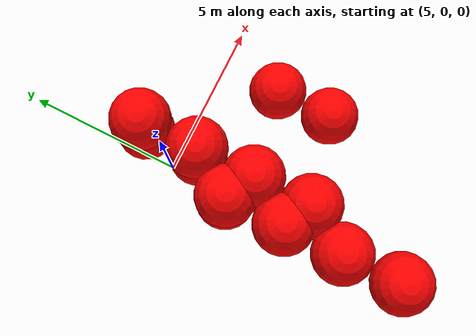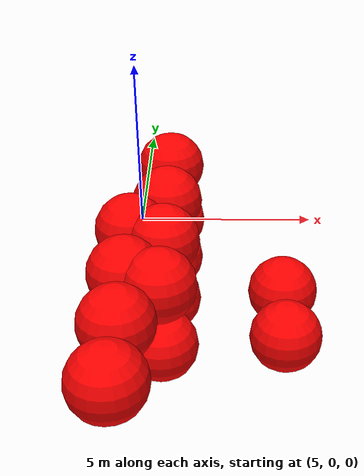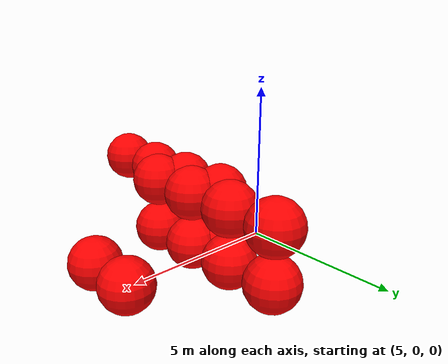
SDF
<sdf version="1.8">
 <world name="3d_world">
  <model name="obstacle_1" canonical_link="obstacle">
   <static>true</static>
   <pose relative_to="world">5.81 -4.48 -1.00 0 0 0</pose>
   <link name="obstacle">
    <pose relative_to="__model__">0.0 0 0.0 0 0 0</pose>
    <visual name="visual">
     <geometry><sphere><radius>1.00</radius></sphere></geometry>
     <material>
      <ambient>1.0 0.0 0.0 1</ambient>
      <diffuse>1.0 0.0 0.0 1</diffuse>
      <specular>1.0 0.0 0.0 1</specular>
     </material>
    </visual>
    <collision name="collision"><geometry><sphere><radius>1.00</radius></sphere></geometry></collision>
    <enable_gravity>false</enable_gravity>
   </link>
   <plugin filename="ignition-gazebo-velocity-control-system" name="ignition::gazebo::systems::VelocityControl">
    <initial_linear>0.00 0.00 0.00</initial_linear>
    <initial_angular>0 0 0</initial_angular>
   </plugin>
   <plugin filename="ignition-gazebo-odometry-publisher-system" name="ignition::gazebo::systems::OdometryPublisher">
    <dimensions>3</dimensions>
   </plugin>
  </model>
  <model name="obstacle_2" canonical_link="obstacle">
   <static>true</static>
   <pose relative_to="world">5.81 -2.48 -1.00 0 0 0</pose>
   <link name="obstacle">
    <pose relative_to="__model__">0.0 0 0.0 0 0 0</pose>
    <visual name="visual">
     <geometry><sphere><radius>1.00</radius></sphere></geometry>
     <material>
      <ambient>1.0 0.0 0.0 1</ambient>
      <diffuse>1.0 0.0 0.0 1</diffuse>
      <specular>1.0 0.0 0.0 1</specular>
     </material>
    </visual>
    <collision name="collision"><geometry><sphere><radius>1.00</radius></sphere></geometry></collision>
    <enable_gravity>false</enable_gravity>
   </link>
   <plugin filename="ignition-gazebo-velocity-control-system" name="ignition::gazebo::systems::VelocityControl">
    <initial_linear>0.00 0.00 0.00</initial_linear>
    <initial_angular>0 0 0</initial_angular>
   </plugin>
   <plugin filename="ignition-gazebo-odometry-publisher-system" name="ignition::gazebo::systems::OdometryPublisher">
    <dimensions>3</dimensions>
   </plugin>
  </model>
  <model name="obstacle_3" canonical_link="obstacle">
   <static>true</static>
   <pose relative_to="world">5.81 -0.48 -1.00 0 0 0</pose>
   <link name="obstacle">
    <pose relative_to="__model__">0.0 0 0.0 0 0 0</pose>
    <visual name="visual">
     <geometry><sphere><radius>1.00</radius></sphere></geometry>
     <material>
      <ambient>1.0 0.0 0.0 1</ambient>
      <diffuse>1.0 0.0 0.0 1</diffuse>
      <specular>1.0 0.0 0.0 1</specular>
     </material>
    </visual>
    <collision name="collision"><geometry><sphere><radius>1.00</radius></sphere></geometry></collision>
    <enable_gravity>false</enable_gravity>
   </link>
   <plugin filename="ignition-gazebo-velocity-control-system" name="ignition::gazebo::systems::VelocityControl">
    <initial_linear>0.00 0.00 0.00</initial_linear>
    <initial_angular>0 0 0</initial_angular>
   </plugin>
   <plugin filename="ignition-gazebo-odometry-publisher-system" name="ignition::gazebo::systems::OdometryPublisher">
    <dimensions>3</dimensions>
   </plugin>
  </model>
  <model name="obstacle_4" canonical_link="obstacle">
   <static>true</static>
   <pose relative_to="world">5.81 1.52 -1.00 0 0 0</pose>
   <link name="obstacle">
    <pose relative_to="__model__">0.0 0 0.0 0 0 0</pose>
    <visual name="visual">
     <geometry><sphere><radius>1.00</radius></sphere></geometry>
     <material>
      <ambient>1.0 0.0 0.0 1</ambient>
      <diffuse>1.0 0.0 0.0 1</diffuse>
      <specular>1.0 0.0 0.0 1</specular>
     </material>
    </visual>
    <collision name="collision"><geometry><sphere><radius>1.00</radius></sphere></geometry></collision>
    <enable_gravity>false</enable_gravity>
   </link>
   <plugin filename="ignition-gazebo-velocity-control-system" name="ignition::gazebo::systems::VelocityControl">
    <initial_linear>0.00 0.00 0.00</initial_linear>
    <initial_angular>0 0 0</initial_angular>
   </plugin>
   <plugin filename="ignition-gazebo-odometry-publisher-system" name="ignition::gazebo::systems::OdometryPublisher">
    <dimensions>3</dimensions>
   </plugin>
  </model>
  <model name="obstacle_5" canonical_link="obstacle">
   <static>true</static>
   <pose relative_to="world">5.81 -4.48 1.00 0 0 0</pose>
   <link name="obstacle">
    <pose relative_to="__model__">0.0 0 0.0 0 0 0</pose>
    <visual name="visual">
     <geometry><sphere><radius>1.00</radius></sphere></geometry>
     <material>
      <ambient>1.0 0.0 0.0 1</ambient>
      <diffuse>1.0 0.0 0.0 1</diffuse>
      <specular>1.0 0.0 0.0 1</specular>
     </material>
    </visual>
    <collision name="collision"><geometry><sphere><radius>1.00</radius></sphere></geometry></collision>
    <enable_gravity>false</enable_gravity>
   </link>
   <plugin filename="ignition-gazebo-velocity-control-system" name="ignition::gazebo::systems::VelocityControl">
    <initial_linear>0.00 0.00 0.00</initial_linear>
    <initial_angular>0 0 0</initial_angular>
   </plugin>
   <plugin filename="ignition-gazebo-odometry-publisher-system" name="ignition::gazebo::systems::OdometryPublisher">
    <dimensions>3</dimensions>
   </plugin>
  </model>
  <model name="obstacle_6" canonical_link="obstacle">
   <static>true</static>
   <pose relative_to="world">5.81 -2.48 1.00 0 0 0</pose>
   <link name="obstacle">
    <pose relative_to="__model__">0.0 0 0.0 0 0 0</pose>
    <visual name="visual">
     <geometry><sphere><radius>1.00</radius></sphere></geometry>
     <material>
      <ambient>1.0 0.0 0.0 1</ambient>
      <diffuse>1.0 0.0 0.0 1</diffuse>
      <specular>1.0 0.0 0.0 1</specular>
     </material>
    </visual>
    <collision name="collision"><geometry><sphere><radius>1.00</radius></sphere></geometry></collision>
    <enable_gravity>false</enable_gravity>
   </link>
   <plugin filename="ignition-gazebo-velocity-control-system" name="ignition::gazebo::systems::VelocityControl">
    <initial_linear>0.00 0.00 0.00</initial_linear>
    <initial_angular>0 0 0</initial_angular>
   </plugin>
   <plugin filename="ignition-gazebo-odometry-publisher-system" name="ignition::gazebo::systems::OdometryPublisher">
    <dimensions>3</dimensions>
   </plugin>
  </model>
  <model name="obstacle_7" canonical_link="obstacle">
   <static>true</static>
   <pose relative_to="world">5.81 -0.48 1.00 0 0 0</pose>
   <link name="obstacle">
    <pose relative_to="__model__">0.0 0 0.0 0 0 0</pose>
    <visual name="visual">
     <geometry><sphere><radius>1.00</radius></sphere></geometry>
     <material>
      <ambient>1.0 0.0 0.0 1</ambient>
      <diffuse>1.0 0.0 0.0 1</diffuse>
      <specular>1.0 0.0 0.0 1</specular>
     </material>
    </visual>
    <collision name="collision"><geometry><sphere><radius>1.00</radius></sphere></geometry></collision>
    <enable_gravity>false</enable_gravity>
   </link>
   <plugin filename="ignition-gazebo-velocity-control-system" name="ignition::gazebo::systems::VelocityControl">
    <initial_linear>0.00 0.00 0.00</initial_linear>
    <initial_angular>0 0 0</initial_angular>
   </plugin>
   <plugin filename="ignition-gazebo-odometry-publisher-system" name="ignition::gazebo::systems::OdometryPublisher">
    <dimensions>3</dimensions>
   </plugin>
  </model>
  <model name="obstacle_8" canonical_link="obstacle">
   <static>true</static>
   <pose relative_to="world">5.81 1.52 1.00 0 0 0</pose>
   <link name="obstacle">
    <pose relative_to="__model__">0.0 0 0.0 0 0 0</pose>
    <visual name="visual">
     <geometry><sphere><radius>1.00</radius></sphere></geometry>
     <material>
      <ambient>1.0 0.0 0.0 1</ambient>
      <diffuse>1.0 0.0 0.0 1</diffuse>
      <specular>1.0 0.0 0.0 1</specular>
     </material>
    </visual>
    <collision name="collision"><geometry><sphere><radius>1.00</radius></sphere></geometry></collision>
    <enable_gravity>false</enable_gravity>
   </link>
   <plugin filename="ignition-gazebo-velocity-control-system" name="ignition::gazebo::systems::VelocityControl">
    <initial_linear>0.00 0.00 0.00</initial_linear>
    <initial_angular>0 0 0</initial_angular>
   </plugin>
   <plugin filename="ignition-gazebo-odometry-publisher-system" name="ignition::gazebo::systems::OdometryPublisher">
    <dimensions>3</dimensions>
   </plugin>
  </model>
  <model name="obstacle_20" canonical_link="obstacle">
   <static>true</static>
   <pose relative_to="world">4.88 -1.96 -1.00 0 0 0</pose>
   <link name="obstacle">
    <pose relative_to="__model__">0.0 0 0.0 0 0 0</pose>
    <visual name="visual">
     <geometry><sphere><radius>1.00</radius></sphere></geometry>
     <material>
      <ambient>1.0 0.0 0.0 1</ambient>
      <diffuse>1.0 0.0 0.0 1</diffuse>
      <specular>1.0 0.0 0.0 1</specular>
     </material>
    </visual>
    <collision name="collision"><geometry><sphere><radius>1.00</radius></sphere></geometry></collision>
    <enable_gravity>false</enable_gravity>
   </link>
   <plugin filename="ignition-gazebo-velocity-control-system" name="ignition::gazebo::systems::VelocityControl">
    <initial_linear>0.00 0.00 0.00</initial_linear>
    <initial_angular>0 0 0</initial_angular>
   </plugin>
   <plugin filename="ignition-gazebo-odometry-publisher-system" name="ignition::gazebo::systems::OdometryPublisher">
    <dimensions>3</dimensions>
   </plugin>
  </model>
  <model name="obstacle_21" canonical_link="obstacle">
   <static>true</static>
   <pose relative_to="world">4.88 -7.96 1.00 0 0 0</pose>
   <link name="obstacle">
    <pose relative_to="__model__">0.0 0 0.0 0 0 0</pose>
    <visual name="visual">
     <geometry><sphere><radius>1.00</radius></sphere></geometry>
     <material>
      <ambient>1.0 0.0 0.0 1</ambient>
      <diffuse>1.0 0.0 0.0 1</diffuse>
      <specular>1.0 0.0 0.0 1</specular>
     </material>
    </visual>
    <collision name="collision"><geometry><sphere><radius>1.00</radius></sphere></geometry></collision>
    <enable_gravity>false</enable_gravity>
   </link>
   <plugin filename="ignition-gazebo-velocity-control-system" name="ignition::gazebo::systems::VelocityControl">
    <initial_linear>0.00 0.00 0.00</initial_linear>
    <initial_angular>0 0 0</initial_angular>
   </plugin>
   <plugin filename="ignition-gazebo-odometry-publisher-system" name="ignition::gazebo::systems::OdometryPublisher">
    <dimensions>3</dimensions>
   </plugin>
  </model>
  <model name="obstacle_22" canonical_link="obstacle">
   <static>true</static>
   <pose relative_to="world">4.88 -5.96 1.00 0 0 0</pose>
   <link name="obstacle">
    <pose relative_to="__model__">0.0 0 0.0 0 0 0</pose>
    <visual name="visual">
     <geometry><sphere><radius>1.00</radius></sphere></geometry>
     <material>
      <ambient>1.0 0.0 0.0 1</ambient>
      <diffuse>1.0 0.0 0.0 1</diffuse>
      <specular>1.0 0.0 0.0 1</specular>
     </material>
    </visual>
    <collision name="collision"><geometry><sphere><radius>1.00</radius></sphere></geometry></collision>
    <enable_gravity>false</enable_gravity>
   </link>
   <plugin filename="ignition-gazebo-velocity-control-system" name="ignition::gazebo::systems::VelocityControl">
    <initial_linear>0.00 0.00 0.00</initial_linear>
    <initial_angular>0 0 0</initial_angular>
   </plugin>
   <plugin filename="ignition-gazebo-odometry-publisher-system" name="ignition::gazebo::systems::OdometryPublisher">
    <dimensions>3</dimensions>
   </plugin>
  </model>
  <model name="obstacle_23" canonical_link="obstacle">
   <static>true</static>
   <pose relative_to="world">4.88 -3.96 1.00 0 0 0</pose>
   <link name="obstacle">
    <pose relative_to="__model__">0.0 0 0.0 0 0 0</pose>
    <visual name="visual">
     <geometry><sphere><radius>1.00</radius></sphere></geometry>
     <material>
      <ambient>1.0 0.0 0.0 1</ambient>
      <diffuse>1.0 0.0 0.0 1</diffuse>
      <specular>1.0 0.0 0.0 1</specular>
     </material>
    </visual>
    <collision name="collision"><geometry><sphere><radius>1.00</radius></sphere></geometry></collision>
    <enable_gravity>false</enable_gravity>
   </link>
   <plugin filename="ignition-gazebo-velocity-control-system" name="ignition::gazebo::systems::VelocityControl">
    <initial_linear>0.00 0.00 0.00</initial_linear>
    <initial_angular>0 0 0</initial_angular>
   </plugin>
   <plugin filename="ignition-gazebo-odometry-publisher-system" name="ignition::gazebo::systems::OdometryPublisher">
    <dimensions>3</dimensions>
   </plugin>
  </model>
  <model name="obstacle_24" canonical_link="obstacle">
   <static>true</static>
   <pose relative_to="world">4.88 -1.96 1.00 0 0 0</pose>
   <link name="obstacle">
    <pose relative_to="__model__">0.0 0 0.0 0 0 0</pose>
    <visual name="visual">
     <geometry><sphere><radius>1.00</radius></sphere></geometry>
     <material>
      <ambient>1.0 0.0 0.0 1</ambient>
      <diffuse>1.0 0.0 0.0 1</diffuse>
      <specular>1.0 0.0 0.0 1</specular>
     </material>
    </visual>
    <collision name="collision"><geometry><sphere><radius>1.00</radius></sphere></geometry></collision>
    <enable_gravity>false</enable_gravity>
   </link>
   <plugin filename="ignition-gazebo-velocity-control-system" name="ignition::gazebo::systems::VelocityControl">
    <initial_linear>0.00 0.00 0.00</initial_linear>
    <initial_angular>0 0 0</initial_angular>
   </plugin>
   <plugin filename="ignition-gazebo-odometry-publisher-system" name="ignition::gazebo::systems::OdometryPublisher">
    <dimensions>3</dimensions>
   </plugin>
  </model>
  <model name="obstacle_27" canonical_link="obstacle">
   <static>false</static>
   <pose relative_to="world">9.16 -3.87 -1.22 0 0 0</pose>
   <link name="obstacle">
    <pose relative_to="__model__">0.0 0 0.0 0 0 0</pose>
    <visual name="visual">
     <geometry><sphere><radius>1.00</radius></sphere></geometry>
     <material>
      <ambient>1.0 0.0 0.0 1</ambient>
      <diffuse>1.0 0.0 0.0 1</diffuse>
      <specular>1.0 0.0 0.0 1</specular>
     </material>
    </visual>
    <collision name="collision"><geometry><sphere><radius>1.00</radius></sphere></geometry></collision>
    <enable_gravity>false</enable_gravity>
   </link>
   <plugin filename="ignition-gazebo-velocity-control-system" name="ignition::gazebo::systems::VelocityControl">
    <initial_linear>0.00 1.52 0.73</initial_linear>
    <initial_angular>0 0 0</initial_angular>
   </plugin>
   <plugin filename="ignition-gazebo-odometry-publisher-system" name="ignition::gazebo::systems::OdometryPublisher">
    <dimensions>3</dimensions>
   </plugin>
  </model>
  <model name="obstacle_28" canonical_link="obstacle">
   <static>false</static>
   <pose relative_to="world">9.16 -1.87 -1.22 0 0 0</pose>
   <link name="obstacle">
    <pose relative_to="__model__">0.0 0 0.0 0 0 0</pose>
    <visual name="visual">
     <geometry><sphere><radius>1.00</radius></sphere></geometry>
     <material>
      <ambient>1.0 0.0 0.0 1</ambient>
      <diffuse>1.0 0.0 0.0 1</diffuse>
      <specular>1.0 0.0 0.0 1</specular>
     </material>
    </visual>
    <collision name="collision"><geometry><sphere><radius>1.00</radius></sphere></geometry></collision>
    <enable_gravity>false</enable_gravity>
   </link>
   <plugin filename="ignition-gazebo-velocity-control-system" name="ignition::gazebo::systems::VelocityControl">
    <initial_linear>0.00 1.52 0.73</initial_linear>
    <initial_angular>0 0 0</initial_angular>
   </plugin>
   <plugin filename="ignition-gazebo-odometry-publisher-system" name="ignition::gazebo::systems::OdometryPublisher">
    <dimensions>3</dimensions>
   </plugin>
  </model>
 </world>
</sdf>
